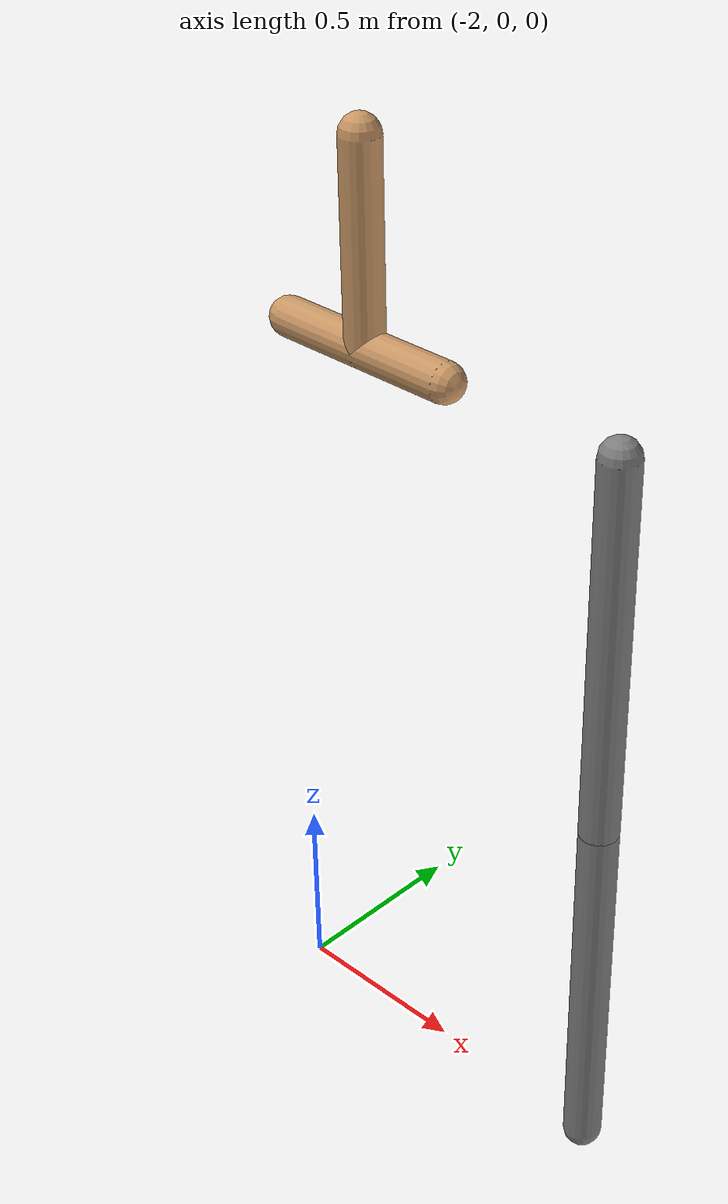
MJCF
<mujoco model="hopper">
  <compiler angle="radian" inertiafromgeom="true"/>
  <option integrator="RK4" timestep="0.01"/>
  <default>
  </default>

  <visual>
  </visual>

  <asset>
    <texture type="skybox" builtin="gradient" rgb1=".29 .0 .5" rgb2="0 0 0" width="100" height="100"/>
  </asset>

  <worldbody>
    <light cutoff="100" diffuse="1 1 1" dir="-0 0 -1.3" directional="true" exponent="1" pos="0 0 1.3" specular=".1 .1 .1"/>
    <geom name="part1" fromto="-1 0 0 -1 0 1" size="0.05" type="capsule"/>
    <camera name="track" mode="fixed" pos="-1 -3 1" xyaxes="1 0 0 0 0 1"/>
    <body name="main" pos="-1 0 1">
      <joint axis="0 -1 0" name="passive_joint" pos="0 0 0" range="-3 3" type="hinge"/>
      <geom name="part2" fromto="0 0 0 0 0 1" size="0.05" type="capsule" contype="3" conaffinity="3"/>
    </body>

    <body name="horizontal_finger" pos="0 0 0">
      <joint axis="1 0 0" name="horizontal_finger" pos="0 0 0" type="slide"/>
      <geom fromto="-2 0 2 -1.5 0 2" size="0.05" type="capsule" contype="1" conaffinity="1" rgba="0.8 0.6 .4 1"/>
    </body>

    <body name="vertical_finger" pos="0 0 0">
      <joint axis="0 0 -1" name="vertical_finger" pos="0 0 0" type="slide"/>
      <geom fromto="-1.75 0 2.5 -1.75 0 2" size="0.05" type="capsule" contype="2" conaffinity="2" rgba="0.8 0.6 .4 1"/>
    </body>

  </worldbody>

  <actuator>
    <position name="positionActuator1" kp="10" kv="4" joint="horizontal_finger"/>
    <position name="positionActuator2" kp="500" kv="100" joint="vertical_finger"/>
  </actuator>

</mujoco>
